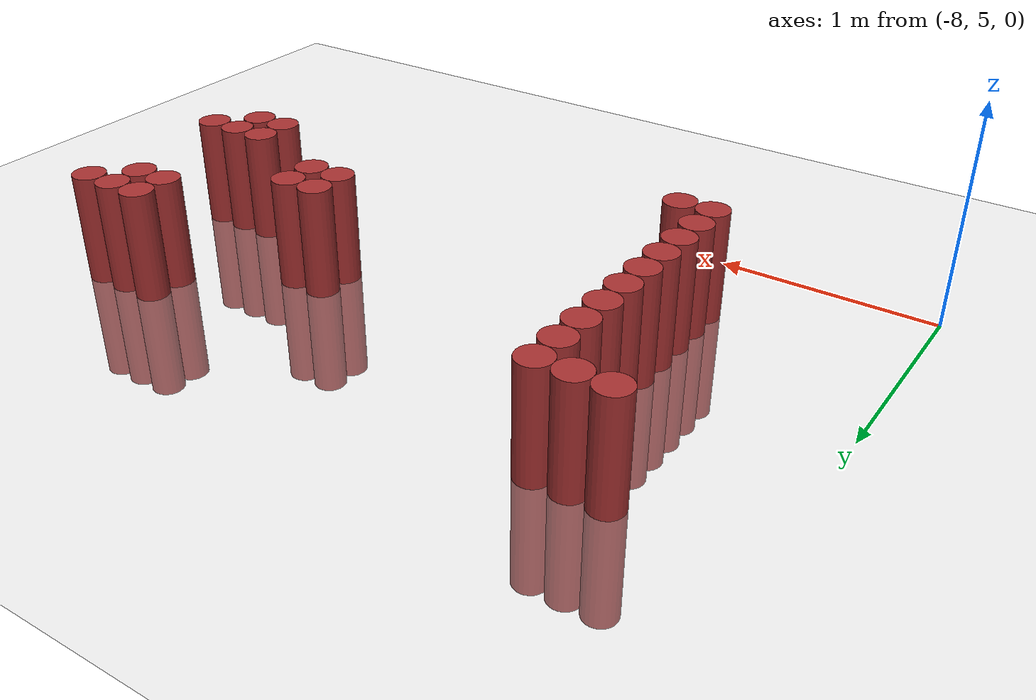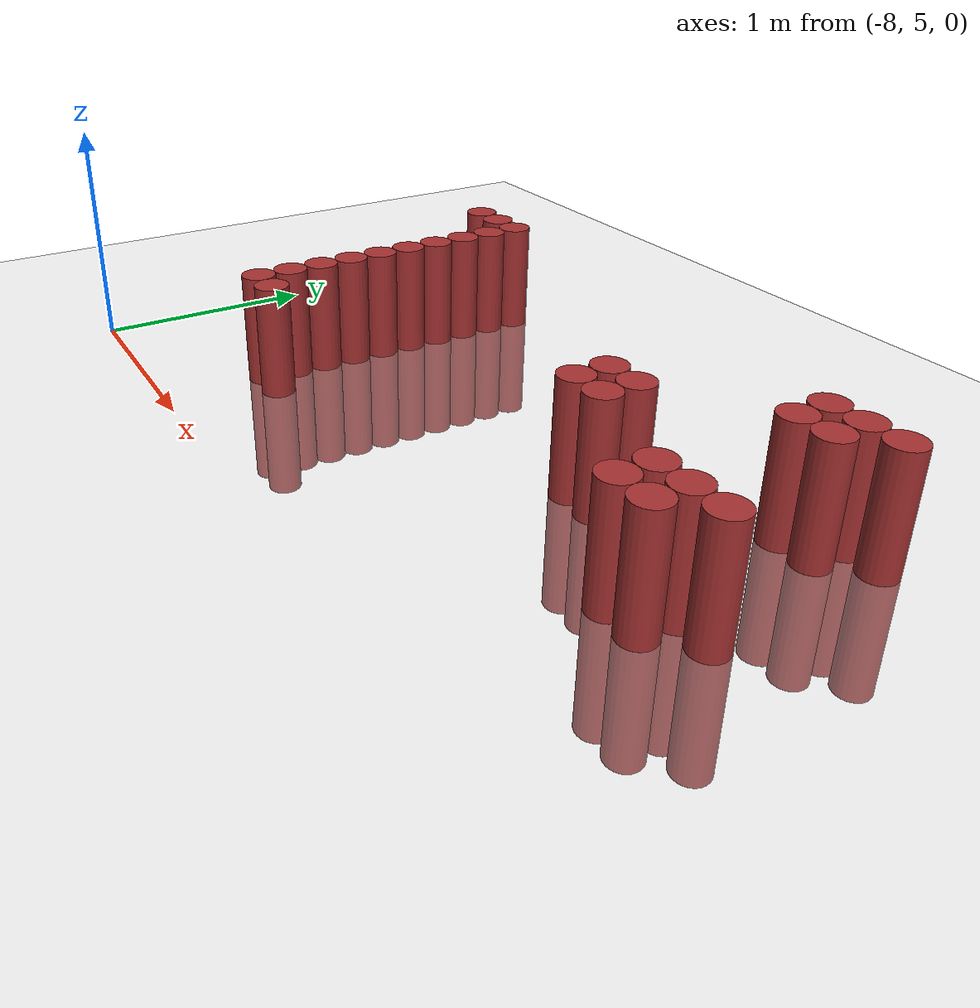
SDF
<sdf version="1.6">
 <world name="default">
  <model name="ground_plane">
   <static>1</static>
   <link name="link">
    <collision name="collision">
     <geometry><plane><normal>0 0 1</normal><size>100 100</size></plane></geometry>
     <surface><friction><ode><mu>100</mu><mu2>50</mu2></ode></friction></surface>
    </collision>
    <visual name="visual">
     <cast_shadows>0</cast_shadows>
     <geometry><plane><normal>0 0 1</normal><size>100 100</size></plane></geometry>
     <material>
      <script><uri>file://media/materials/scripts/gazebo.material</uri><name>Gazebo/Grey</name></script>
     </material>
    </visual>
   </link>
  </model>
  <model name="unit_cylinder_192">
   <static>1</static>
   <pose>-7.425000 6.825000 0.000000 0.000000 0.000000 0.000000</pose>
   <link name="link">
    <inertial>
     <mass>1</mass>
     <inertia><ixx>0.145833</ixx><ixy>0</ixy><ixz>0</ixz><iyy>0.145833</iyy><iyz>0</iyz><izz>0.125</izz></inertia>
    </inertial>
    <collision name="collision">
     <geometry><cylinder><radius>0.075000</radius><length>1</length></cylinder></geometry>
    </collision>
    <visual name="visual">
     <geometry><cylinder><radius>0.075000</radius><length>1</length></cylinder></geometry>
     <material>
      <ambient>0.648000 0.192000 0.192000 1</ambient>
      <diffuse>0.648000 0.192000 0.192000 1</diffuse>
     </material>
     <material>
      <script><name>Gazebo/Grey</name><uri>file://media/materials/scripts/gazebo.material</uri></script>
     </material>
    </visual>
   </link>
  </model>
  <model name="unit_cylinder_194">
   <static>1</static>
   <pose>-7.275000 6.825000 0.000000 0.000000 0.000000 0.000000</pose>
   <link name="link">
    <inertial>
     <mass>1</mass>
     <inertia><ixx>0.145833</ixx><ixy>0</ixy><ixz>0</ixz><iyy>0.145833</iyy><iyz>0</iyz><izz>0.125</izz></inertia>
    </inertial>
    <collision name="collision">
     <geometry><cylinder><radius>0.075000</radius><length>1</length></cylinder></geometry>
    </collision>
    <visual name="visual">
     <geometry><cylinder><radius>0.075000</radius><length>1</length></cylinder></geometry>
     <material>
      <ambient>0.648000 0.192000 0.192000 1</ambient>
      <diffuse>0.648000 0.192000 0.192000 1</diffuse>
     </material>
     <material>
      <script><name>Gazebo/Grey</name><uri>file://media/materials/scripts/gazebo.material</uri></script>
     </material>
    </visual>
   </link>
  </model>
  <model name="unit_cylinder_196">
   <static>1</static>
   <pose>-7.125000 5.475000 0.000000 0.000000 0.000000 0.000000</pose>
   <link name="link">
    <inertial>
     <mass>1</mass>
     <inertia><ixx>0.145833</ixx><ixy>0</ixy><ixz>0</ixz><iyy>0.145833</iyy><iyz>0</iyz><izz>0.125</izz></inertia>
    </inertial>
    <collision name="collision">
     <geometry><cylinder><radius>0.075000</radius><length>1</length></cylinder></geometry>
    </collision>
    <visual name="visual">
     <geometry><cylinder><radius>0.075000</radius><length>1</length></cylinder></geometry>
     <material>
      <ambient>0.648000 0.192000 0.192000 1</ambient>
      <diffuse>0.648000 0.192000 0.192000 1</diffuse>
     </material>
     <material>
      <script><name>Gazebo/Grey</name><uri>file://media/materials/scripts/gazebo.material</uri></script>
     </material>
    </visual>
   </link>
  </model>
  <model name="unit_cylinder_197">
   <static>1</static>
   <pose>-7.125000 5.625000 0.000000 0.000000 0.000000 0.000000</pose>
   <link name="link">
    <inertial>
     <mass>1</mass>
     <inertia><ixx>0.145833</ixx><ixy>0</ixy><ixz>0</ixz><iyy>0.145833</iyy><iyz>0</iyz><izz>0.125</izz></inertia>
    </inertial>
    <collision name="collision">
     <geometry><cylinder><radius>0.075000</radius><length>1</length></cylinder></geometry>
    </collision>
    <visual name="visual">
     <geometry><cylinder><radius>0.075000</radius><length>1</length></cylinder></geometry>
     <material>
      <ambient>0.648000 0.192000 0.192000 1</ambient>
      <diffuse>0.648000 0.192000 0.192000 1</diffuse>
     </material>
     <material>
      <script><name>Gazebo/Grey</name><uri>file://media/materials/scripts/gazebo.material</uri></script>
     </material>
    </visual>
   </link>
  </model>
  <model name="unit_cylinder_198">
   <static>1</static>
   <pose>-7.125000 5.775000 0.000000 0.000000 0.000000 0.000000</pose>
   <link name="link">
    <inertial>
     <mass>1</mass>
     <inertia><ixx>0.145833</ixx><ixy>0</ixy><ixz>0</ixz><iyy>0.145833</iyy><iyz>0</iyz><izz>0.125</izz></inertia>
    </inertial>
    <collision name="collision">
     <geometry><cylinder><radius>0.075000</radius><length>1</length></cylinder></geometry>
    </collision>
    <visual name="visual">
     <geometry><cylinder><radius>0.075000</radius><length>1</length></cylinder></geometry>
     <material>
      <ambient>0.648000 0.192000 0.192000 1</ambient>
      <diffuse>0.648000 0.192000 0.192000 1</diffuse>
     </material>
     <material>
      <script><name>Gazebo/Grey</name><uri>file://media/materials/scripts/gazebo.material</uri></script>
     </material>
    </visual>
   </link>
  </model>
  <model name="unit_cylinder_199">
   <static>1</static>
   <pose>-7.125000 5.925000 0.000000 0.000000 0.000000 0.000000</pose>
   <link name="link">
    <inertial>
     <mass>1</mass>
     <inertia><ixx>0.145833</ixx><ixy>0</ixy><ixz>0</ixz><iyy>0.145833</iyy><iyz>0</iyz><izz>0.125</izz></inertia>
    </inertial>
    <collision name="collision">
     <geometry><cylinder><radius>0.075000</radius><length>1</length></cylinder></geometry>
    </collision>
    <visual name="visual">
     <geometry><cylinder><radius>0.075000</radius><length>1</length></cylinder></geometry>
     <material>
      <ambient>0.648000 0.192000 0.192000 1</ambient>
      <diffuse>0.648000 0.192000 0.192000 1</diffuse>
     </material>
     <material>
      <script><name>Gazebo/Grey</name><uri>file://media/materials/scripts/gazebo.material</uri></script>
     </material>
    </visual>
   </link>
  </model>
  <model name="unit_cylinder_200">
   <static>1</static>
   <pose>-7.125000 6.075000 0.000000 0.000000 0.000000 0.000000</pose>
   <link name="link">
    <inertial>
     <mass>1</mass>
     <inertia><ixx>0.145833</ixx><ixy>0</ixy><ixz>0</ixz><iyy>0.145833</iyy><iyz>0</iyz><izz>0.125</izz></inertia>
    </inertial>
    <collision name="collision">
     <geometry><cylinder><radius>0.075000</radius><length>1</length></cylinder></geometry>
    </collision>
    <visual name="visual">
     <geometry><cylinder><radius>0.075000</radius><length>1</length></cylinder></geometry>
     <material>
      <ambient>0.648000 0.192000 0.192000 1</ambient>
      <diffuse>0.648000 0.192000 0.192000 1</diffuse>
     </material>
     <material>
      <script><name>Gazebo/Grey</name><uri>file://media/materials/scripts/gazebo.material</uri></script>
     </material>
    </visual>
   </link>
  </model>
  <model name="unit_cylinder_201">
   <static>1</static>
   <pose>-7.125000 6.225000 0.000000 0.000000 0.000000 0.000000</pose>
   <link name="link">
    <inertial>
     <mass>1</mass>
     <inertia><ixx>0.145833</ixx><ixy>0</ixy><ixz>0</ixz><iyy>0.145833</iyy><iyz>0</iyz><izz>0.125</izz></inertia>
    </inertial>
    <collision name="collision">
     <geometry><cylinder><radius>0.075000</radius><length>1</length></cylinder></geometry>
    </collision>
    <visual name="visual">
     <geometry><cylinder><radius>0.075000</radius><length>1</length></cylinder></geometry>
     <material>
      <ambient>0.648000 0.192000 0.192000 1</ambient>
      <diffuse>0.648000 0.192000 0.192000 1</diffuse>
     </material>
     <material>
      <script><name>Gazebo/Grey</name><uri>file://media/materials/scripts/gazebo.material</uri></script>
     </material>
    </visual>
   </link>
  </model>
  <model name="unit_cylinder_202">
   <static>1</static>
   <pose>-7.125000 6.375000 0.000000 0.000000 0.000000 0.000000</pose>
   <link name="link">
    <inertial>
     <mass>1</mass>
     <inertia><ixx>0.145833</ixx><ixy>0</ixy><ixz>0</ixz><iyy>0.145833</iyy><iyz>0</iyz><izz>0.125</izz></inertia>
    </inertial>
    <collision name="collision">
     <geometry><cylinder><radius>0.075000</radius><length>1</length></cylinder></geometry>
    </collision>
    <visual name="visual">
     <geometry><cylinder><radius>0.075000</radius><length>1</length></cylinder></geometry>
     <material>
      <ambient>0.648000 0.192000 0.192000 1</ambient>
      <diffuse>0.648000 0.192000 0.192000 1</diffuse>
     </material>
     <material>
      <script><name>Gazebo/Grey</name><uri>file://media/materials/scripts/gazebo.material</uri></script>
     </material>
    </visual>
   </link>
  </model>
  <model name="unit_cylinder_203">
   <static>1</static>
   <pose>-7.125000 6.525000 0.000000 0.000000 0.000000 0.000000</pose>
   <link name="link">
    <inertial>
     <mass>1</mass>
     <inertia><ixx>0.145833</ixx><ixy>0</ixy><ixz>0</ixz><iyy>0.145833</iyy><iyz>0</iyz><izz>0.125</izz></inertia>
    </inertial>
    <collision name="collision">
     <geometry><cylinder><radius>0.075000</radius><length>1</length></cylinder></geometry>
    </collision>
    <visual name="visual">
     <geometry><cylinder><radius>0.075000</radius><length>1</length></cylinder></geometry>
     <material>
      <ambient>0.648000 0.192000 0.192000 1</ambient>
      <diffuse>0.648000 0.192000 0.192000 1</diffuse>
     </material>
     <material>
      <script><name>Gazebo/Grey</name><uri>file://media/materials/scripts/gazebo.material</uri></script>
     </material>
    </visual>
   </link>
  </model>
  <model name="unit_cylinder_204">
   <static>1</static>
   <pose>-7.125000 6.675000 0.000000 0.000000 0.000000 0.000000</pose>
   <link name="link">
    <inertial>
     <mass>1</mass>
     <inertia><ixx>0.145833</ixx><ixy>0</ixy><ixz>0</ixz><iyy>0.145833</iyy><iyz>0</iyz><izz>0.125</izz></inertia>
    </inertial>
    <collision name="collision">
     <geometry><cylinder><radius>0.075000</radius><length>1</length></cylinder></geometry>
    </collision>
    <visual name="visual">
     <geometry><cylinder><radius>0.075000</radius><length>1</length></cylinder></geometry>
     <material>
      <ambient>0.648000 0.192000 0.192000 1</ambient>
      <diffuse>0.648000 0.192000 0.192000 1</diffuse>
     </material>
     <material>
      <script><name>Gazebo/Grey</name><uri>file://media/materials/scripts/gazebo.material</uri></script>
     </material>
    </visual>
   </link>
  </model>
  <model name="unit_cylinder_205">
   <static>1</static>
   <pose>-7.125000 6.825000 0.000000 0.000000 0.000000 0.000000</pose>
   <link name="link">
    <inertial>
     <mass>1</mass>
     <inertia><ixx>0.145833</ixx><ixy>0</ixy><ixz>0</ixz><iyy>0.145833</iyy><iyz>0</iyz><izz>0.125</izz></inertia>
    </inertial>
    <collision name="collision">
     <geometry><cylinder><radius>0.075000</radius><length>1</length></cylinder></geometry>
    </collision>
    <visual name="visual">
     <geometry><cylinder><radius>0.075000</radius><length>1</length></cylinder></geometry>
     <material>
      <ambient>0.648000 0.192000 0.192000 1</ambient>
      <diffuse>0.648000 0.192000 0.192000 1</diffuse>
     </material>
     <material>
      <script><name>Gazebo/Grey</name><uri>file://media/materials/scripts/gazebo.material</uri></script>
     </material>
    </visual>
   </link>
  </model>
  <model name="unit_cylinder_208">
   <static>1</static>
   <pose>-6.975000 5.475000 0.000000 0.000000 0.000000 0.000000</pose>
   <link name="link">
    <inertial>
     <mass>1</mass>
     <inertia><ixx>0.145833</ixx><ixy>0</ixy><ixz>0</ixz><iyy>0.145833</iyy><iyz>0</iyz><izz>0.125</izz></inertia>
    </inertial>
    <collision name="collision">
     <geometry><cylinder><radius>0.075000</radius><length>1</length></cylinder></geometry>
    </collision>
    <visual name="visual">
     <geometry><cylinder><radius>0.075000</radius><length>1</length></cylinder></geometry>
     <material>
      <ambient>0.648000 0.192000 0.192000 1</ambient>
      <diffuse>0.648000 0.192000 0.192000 1</diffuse>
     </material>
     <material>
      <script><name>Gazebo/Grey</name><uri>file://media/materials/scripts/gazebo.material</uri></script>
     </material>
    </visual>
   </link>
  </model>
  <model name="unit_cylinder_218">
   <static>1</static>
   <pose>-5.625000 6.075000 0.000000 0.000000 0.000000 0.000000</pose>
   <link name="link">
    <inertial>
     <mass>1</mass>
     <inertia><ixx>0.145833</ixx><ixy>0</ixy><ixz>0</ixz><iyy>0.145833</iyy><iyz>0</iyz><izz>0.125</izz></inertia>
    </inertial>
    <collision name="collision">
     <geometry><cylinder><radius>0.075000</radius><length>1</length></cylinder></geometry>
    </collision>
    <visual name="visual">
     <geometry><cylinder><radius>0.075000</radius><length>1</length></cylinder></geometry>
     <material>
      <ambient>0.648000 0.192000 0.192000 1</ambient>
      <diffuse>0.648000 0.192000 0.192000 1</diffuse>
     </material>
     <material>
      <script><name>Gazebo/Grey</name><uri>file://media/materials/scripts/gazebo.material</uri></script>
     </material>
    </visual>
   </link>
  </model>
  <model name="unit_cylinder_219">
   <static>1</static>
   <pose>-5.625000 6.225000 0.000000 0.000000 0.000000 0.000000</pose>
   <link name="link">
    <inertial>
     <mass>1</mass>
     <inertia><ixx>0.145833</ixx><ixy>0</ixy><ixz>0</ixz><iyy>0.145833</iyy><iyz>0</iyz><izz>0.125</izz></inertia>
    </inertial>
    <collision name="collision">
     <geometry><cylinder><radius>0.075000</radius><length>1</length></cylinder></geometry>
    </collision>
    <visual name="visual">
     <geometry><cylinder><radius>0.075000</radius><length>1</length></cylinder></geometry>
     <material>
      <ambient>0.648000 0.192000 0.192000 1</ambient>
      <diffuse>0.648000 0.192000 0.192000 1</diffuse>
     </material>
     <material>
      <script><name>Gazebo/Grey</name><uri>file://media/materials/scripts/gazebo.material</uri></script>
     </material>
    </visual>
   </link>
  </model>
  <model name="unit_cylinder_223">
   <static>1</static>
   <pose>-5.475000 6.075000 0.000000 0.000000 0.000000 0.000000</pose>
   <link name="link">
    <inertial>
     <mass>1</mass>
     <inertia><ixx>0.145833</ixx><ixy>0</ixy><ixz>0</ixz><iyy>0.145833</iyy><iyz>0</iyz><izz>0.125</izz></inertia>
    </inertial>
    <collision name="collision">
     <geometry><cylinder><radius>0.075000</radius><length>1</length></cylinder></geometry>
    </collision>
    <visual name="visual">
     <geometry><cylinder><radius>0.075000</radius><length>1</length></cylinder></geometry>
     <material>
      <ambient>0.648000 0.192000 0.192000 1</ambient>
      <diffuse>0.648000 0.192000 0.192000 1</diffuse>
     </material>
     <material>
      <script><name>Gazebo/Grey</name><uri>file://media/materials/scripts/gazebo.material</uri></script>
     </material>
    </visual>
   </link>
  </model>
  <model name="unit_cylinder_224">
   <static>1</static>
   <pose>-5.475000 6.225000 0.000000 0.000000 0.000000 0.000000</pose>
   <link name="link">
    <inertial>
     <mass>1</mass>
     <inertia><ixx>0.145833</ixx><ixy>0</ixy><ixz>0</ixz><iyy>0.145833</iyy><iyz>0</iyz><izz>0.125</izz></inertia>
    </inertial>
    <collision name="collision">
     <geometry><cylinder><radius>0.075000</radius><length>1</length></cylinder></geometry>
    </collision>
    <visual name="visual">
     <geometry><cylinder><radius>0.075000</radius><length>1</length></cylinder></geometry>
     <material>
      <ambient>0.648000 0.192000 0.192000 1</ambient>
      <diffuse>0.648000 0.192000 0.192000 1</diffuse>
     </material>
     <material>
      <script><name>Gazebo/Grey</name><uri>file://media/materials/scripts/gazebo.material</uri></script>
     </material>
    </visual>
   </link>
  </model>
  <model name="unit_cylinder_230">
   <static>1</static>
   <pose>-5.025000 5.775000 0.000000 0.000000 0.000000 0.000000</pose>
   <link name="link">
    <inertial>
     <mass>1</mass>
     <inertia><ixx>0.145833</ixx><ixy>0</ixy><ixz>0</ixz><iyy>0.145833</iyy><iyz>0</iyz><izz>0.125</izz></inertia>
    </inertial>
    <collision name="collision">
     <geometry><cylinder><radius>0.075000</radius><length>1</length></cylinder></geometry>
    </collision>
    <visual name="visual">
     <geometry><cylinder><radius>0.075000</radius><length>1</length></cylinder></geometry>
     <material>
      <ambient>0.648000 0.192000 0.192000 1</ambient>
      <diffuse>0.648000 0.192000 0.192000 1</diffuse>
     </material>
     <material>
      <script><name>Gazebo/Grey</name><uri>file://media/materials/scripts/gazebo.material</uri></script>
     </material>
    </visual>
   </link>
  </model>
  <model name="unit_cylinder_231">
   <static>1</static>
   <pose>-5.025000 5.925000 0.000000 0.000000 0.000000 0.000000</pose>
   <link name="link">
    <inertial>
     <mass>1</mass>
     <inertia><ixx>0.145833</ixx><ixy>0</ixy><ixz>0</ixz><iyy>0.145833</iyy><iyz>0</iyz><izz>0.125</izz></inertia>
    </inertial>
    <collision name="collision">
     <geometry><cylinder><radius>0.075000</radius><length>1</length></cylinder></geometry>
    </collision>
    <visual name="visual">
     <geometry><cylinder><radius>0.075000</radius><length>1</length></cylinder></geometry>
     <material>
      <ambient>0.648000 0.192000 0.192000 1</ambient>
      <diffuse>0.648000 0.192000 0.192000 1</diffuse>
     </material>
     <material>
      <script><name>Gazebo/Grey</name><uri>file://media/materials/scripts/gazebo.material</uri></script>
     </material>
    </visual>
   </link>
  </model>
  <model name="unit_cylinder_232">
   <static>1</static>
   <pose>-5.025000 6.525000 0.000000 0.000000 0.000000 0.000000</pose>
   <link name="link">
    <inertial>
     <mass>1</mass>
     <inertia><ixx>0.145833</ixx><ixy>0</ixy><ixz>0</ixz><iyy>0.145833</iyy><iyz>0</iyz><izz>0.125</izz></inertia>
    </inertial>
    <collision name="collision">
     <geometry><cylinder><radius>0.075000</radius><length>1</length></cylinder></geometry>
    </collision>
    <visual name="visual">
     <geometry><cylinder><radius>0.075000</radius><length>1</length></cylinder></geometry>
     <material>
      <ambient>0.648000 0.192000 0.192000 1</ambient>
      <diffuse>0.648000 0.192000 0.192000 1</diffuse>
     </material>
     <material>
      <script><name>Gazebo/Grey</name><uri>file://media/materials/scripts/gazebo.material</uri></script>
     </material>
    </visual>
   </link>
  </model>
  <model name="unit_cylinder_233">
   <static>1</static>
   <pose>-5.025000 6.675000 0.000000 0.000000 0.000000 0.000000</pose>
   <link name="link">
    <inertial>
     <mass>1</mass>
     <inertia><ixx>0.145833</ixx><ixy>0</ixy><ixz>0</ixz><iyy>0.145833</iyy><iyz>0</iyz><izz>0.125</izz></inertia>
    </inertial>
    <collision name="collision">
     <geometry><cylinder><radius>0.075000</radius><length>1</length></cylinder></geometry>
    </collision>
    <visual name="visual">
     <geometry><cylinder><radius>0.075000</radius><length>1</length></cylinder></geometry>
     <material>
      <ambient>0.648000 0.192000 0.192000 1</ambient>
      <diffuse>0.648000 0.192000 0.192000 1</diffuse>
     </material>
     <material>
      <script><name>Gazebo/Grey</name><uri>file://media/materials/scripts/gazebo.material</uri></script>
     </material>
    </visual>
   </link>
  </model>
  <model name="unit_cylinder_235">
   <static>1</static>
   <pose>-4.875000 5.775000 0.000000 0.000000 0.000000 0.000000</pose>
   <link name="link">
    <inertial>
     <mass>1</mass>
     <inertia><ixx>0.145833</ixx><ixy>0</ixy><ixz>0</ixz><iyy>0.145833</iyy><iyz>0</iyz><izz>0.125</izz></inertia>
    </inertial>
    <collision name="collision">
     <geometry><cylinder><radius>0.075000</radius><length>1</length></cylinder></geometry>
    </collision>
    <visual name="visual">
     <geometry><cylinder><radius>0.075000</radius><length>1</length></cylinder></geometry>
     <material>
      <ambient>0.648000 0.192000 0.192000 1</ambient>
      <diffuse>0.648000 0.192000 0.192000 1</diffuse>
     </material>
     <material>
      <script><name>Gazebo/Grey</name><uri>file://media/materials/scripts/gazebo.material</uri></script>
     </material>
    </visual>
   </link>
  </model>
  <model name="unit_cylinder_236">
   <static>1</static>
   <pose>-4.875000 5.925000 0.000000 0.000000 0.000000 0.000000</pose>
   <link name="link">
    <inertial>
     <mass>1</mass>
     <inertia><ixx>0.145833</ixx><ixy>0</ixy><ixz>0</ixz><iyy>0.145833</iyy><iyz>0</iyz><izz>0.125</izz></inertia>
    </inertial>
    <collision name="collision">
     <geometry><cylinder><radius>0.075000</radius><length>1</length></cylinder></geometry>
    </collision>
    <visual name="visual">
     <geometry><cylinder><radius>0.075000</radius><length>1</length></cylinder></geometry>
     <material>
      <ambient>0.648000 0.192000 0.192000 1</ambient>
      <diffuse>0.648000 0.192000 0.192000 1</diffuse>
     </material>
     <material>
      <script><name>Gazebo/Grey</name><uri>file://media/materials/scripts/gazebo.material</uri></script>
     </material>
    </visual>
   </link>
  </model>
  <model name="unit_cylinder_237">
   <static>1</static>
   <pose>-4.875000 6.525000 0.000000 0.000000 0.000000 0.000000</pose>
   <link name="link">
    <inertial>
     <mass>1</mass>
     <inertia><ixx>0.145833</ixx><ixy>0</ixy><ixz>0</ixz><iyy>0.145833</iyy><iyz>0</iyz><izz>0.125</izz></inertia>
    </inertial>
    <collision name="collision">
     <geometry><cylinder><radius>0.075000</radius><length>1</length></cylinder></geometry>
    </collision>
    <visual name="visual">
     <geometry><cylinder><radius>0.075000</radius><length>1</length></cylinder></geometry>
     <material>
      <ambient>0.648000 0.192000 0.192000 1</ambient>
      <diffuse>0.648000 0.192000 0.192000 1</diffuse>
     </material>
     <material>
      <script><name>Gazebo/Grey</name><uri>file://media/materials/scripts/gazebo.material</uri></script>
     </material>
    </visual>
   </link>
  </model>
  <model name="unit_cylinder_238">
   <static>1</static>
   <pose>-4.875000 6.675000 0.000000 0.000000 0.000000 0.000000</pose>
   <link name="link">
    <inertial>
     <mass>1</mass>
     <inertia><ixx>0.145833</ixx><ixy>0</ixy><ixz>0</ixz><iyy>0.145833</iyy><iyz>0</iyz><izz>0.125</izz></inertia>
    </inertial>
    <collision name="collision">
     <geometry><cylinder><radius>0.075000</radius><length>1</length></cylinder></geometry>
    </collision>
    <visual name="visual">
     <geometry><cylinder><radius>0.075000</radius><length>1</length></cylinder></geometry>
     <material>
      <ambient>0.648000 0.192000 0.192000 1</ambient>
      <diffuse>0.648000 0.192000 0.192000 1</diffuse>
     </material>
     <material>
      <script><name>Gazebo/Grey</name><uri>file://media/materials/scripts/gazebo.material</uri></script>
     </material>
    </visual>
   </link>
  </model>
  <model name="unit_cylinder_247">
   <static>1</static>
   <pose>-4.725000 5.925000 0.000000 0.000000 0.000000 0.000000</pose>
   <link name="link">
    <inertial>
     <mass>1</mass>
     <inertia><ixx>0.145833</ixx><ixy>0</ixy><ixz>0</ixz><iyy>0.145833</iyy><iyz>0</iyz><izz>0.125</izz></inertia>
    </inertial>
    <collision name="collision">
     <geometry><cylinder><radius>0.075000</radius><length>1</length></cylinder></geometry>
    </collision>
    <visual name="visual">
     <geometry><cylinder><radius>0.075000</radius><length>1</length></cylinder></geometry>
     <material>
      <ambient>0.648000 0.192000 0.192000 1</ambient>
      <diffuse>0.648000 0.192000 0.192000 1</diffuse>
     </material>
     <material>
      <script><name>Gazebo/Grey</name><uri>file://media/materials/scripts/gazebo.material</uri></script>
     </material>
    </visual>
   </link>
  </model>
  <model name="unit_cylinder_248">
   <static>1</static>
   <pose>-4.725000 6.675000 0.000000 0.000000 0.000000 0.000000</pose>
   <link name="link">
    <inertial>
     <mass>1</mass>
     <inertia><ixx>0.145833</ixx><ixy>0</ixy><ixz>0</ixz><iyy>0.145833</iyy><iyz>0</iyz><izz>0.125</izz></inertia>
    </inertial>
    <collision name="collision">
     <geometry><cylinder><radius>0.075000</radius><length>1</length></cylinder></geometry>
    </collision>
    <visual name="visual">
     <geometry><cylinder><radius>0.075000</radius><length>1</length></cylinder></geometry>
     <material>
      <ambient>0.648000 0.192000 0.192000 1</ambient>
      <diffuse>0.648000 0.192000 0.192000 1</diffuse>
     </material>
     <material>
      <script><name>Gazebo/Grey</name><uri>file://media/materials/scripts/gazebo.material</uri></script>
     </material>
    </visual>
   </link>
  </model>
 </world>
</sdf>
